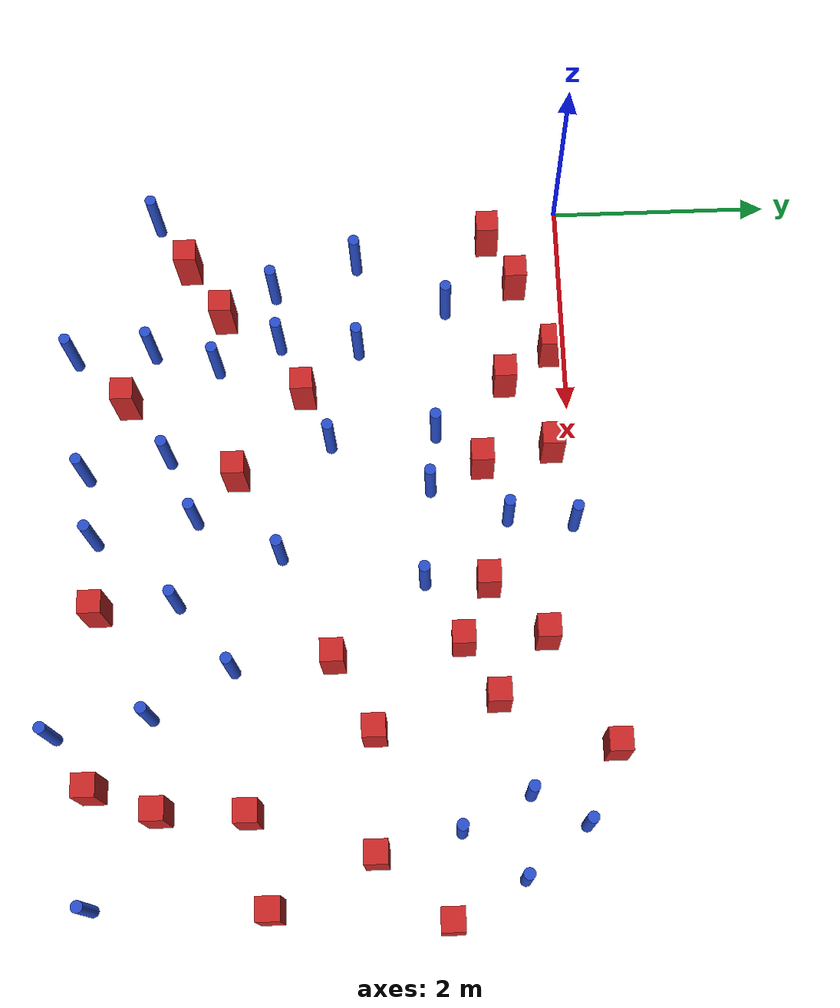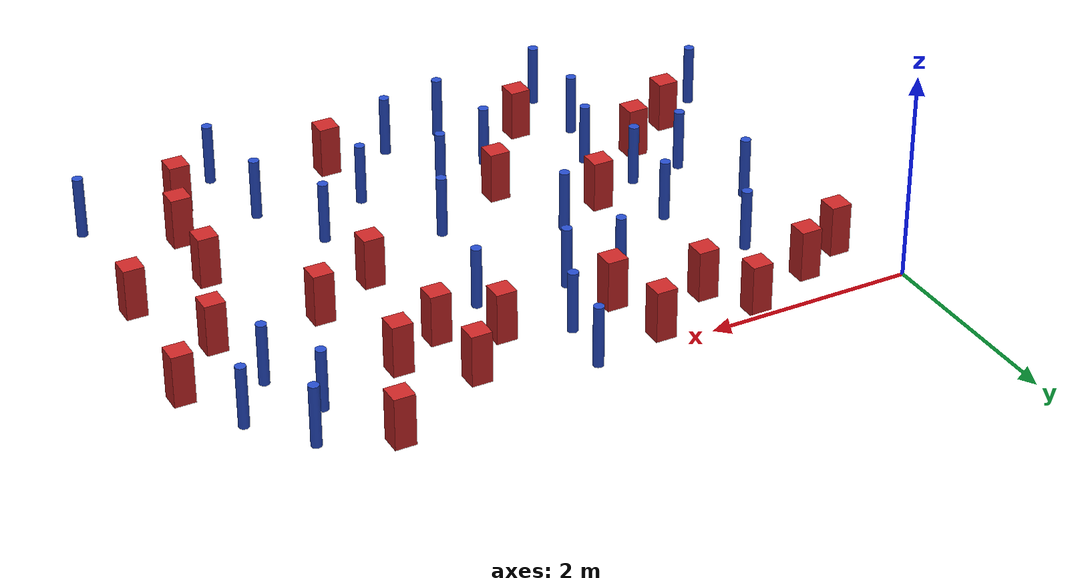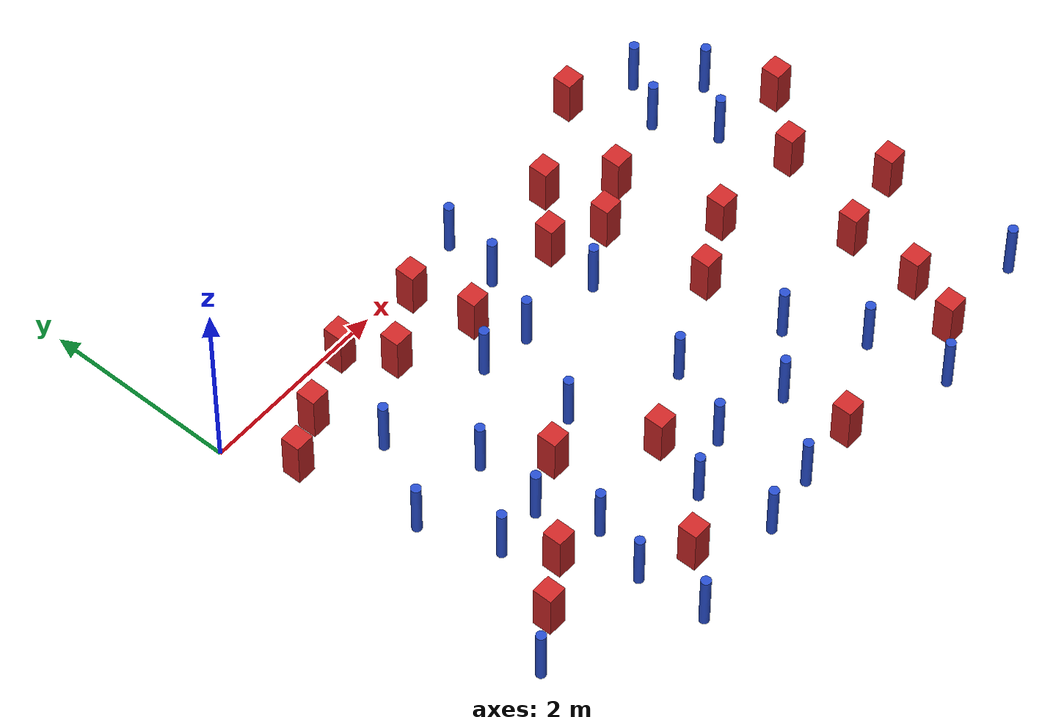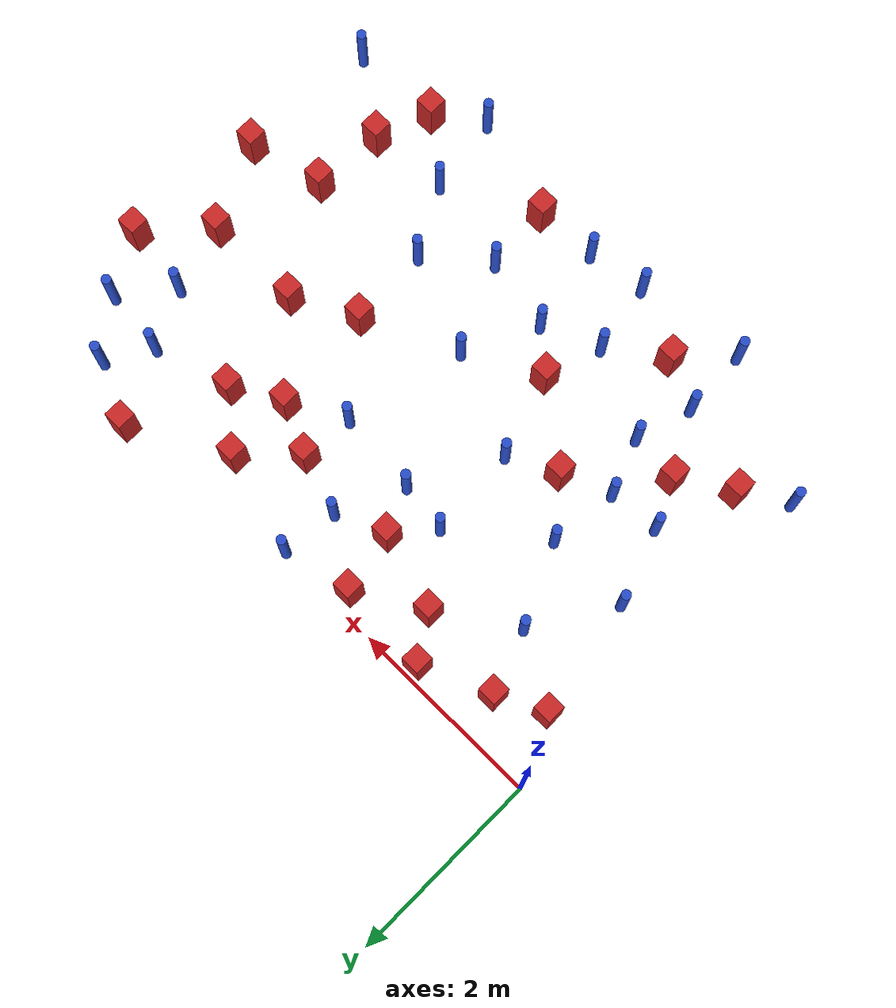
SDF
<sdf version="1.6">
 <model name="dense_83">
  <model name="pole_obstacle8">
   <static>true</static>
   <pose>5.48556464558 -0.522978440494 -2.66029137441e-07 -5.69430205637e-07 6.84129966554e-07 -8.68349370847e-08</pose>
   <link name="link">
    <pose>0 0 0.3 0 -0 0</pose>
    <inertial>
     <mass>1</mass>
     <inertia><ixx>0.145833</ixx><ixy>0</ixy><ixz>0</ixz><iyy>0.145833</iyy><iyz>0</iyz><izz>0.125</izz></inertia>
    </inertial>
    <collision name="collision">
     <geometry><cylinder><radius>0.05</radius><length>.6</length></cylinder></geometry>
    </collision>
    <visual name="visual">
     <geometry><cylinder><radius>0.05</radius><length>.6</length></cylinder></geometry>
     <material>
      <script><name>Gazebo/Blue</name><uri>file://media/materials/scripts/gazebo.material</uri></script>
     </material>
    </visual>
   </link>
  </model>
  <model name="pole_obstacle9">
   <static>true</static>
   <pose>3.62680131533 -1.34526293371 -2.66029137441e-07 -5.69430205626e-07 6.84129966567e-07 -8.68349370747e-08</pose>
   <link name="link">
    <pose>0 0 0.3 0 -0 0</pose>
    <inertial>
     <mass>1</mass>
     <inertia><ixx>0.145833</ixx><ixy>0</ixy><ixz>0</ixz><iyy>0.145833</iyy><iyz>0</iyz><izz>0.125</izz></inertia>
    </inertial>
    <collision name="collision">
     <geometry><cylinder><radius>0.05</radius><length>.6</length></cylinder></geometry>
    </collision>
    <visual name="visual">
     <geometry><cylinder><radius>0.05</radius><length>.6</length></cylinder></geometry>
     <material>
      <script><name>Gazebo/Blue</name><uri>file://media/materials/scripts/gazebo.material</uri></script>
     </material>
    </visual>
   </link>
  </model>
  <model name="square_post_obstacle17">
   <static>true</static>
   <pose>4.17508941673 -1.03326781542 -7.80171244635e-07 7.17449752808e-06 -5.6639232126e-07 2.2715510512e-05</pose>
   <link name="link">
    <pose>0 0 0.25 0 -0 0</pose>
    <inertial>
     <mass>100</mass>
     <inertia>
      <ixx>0.166667</ixx>
      <ixy>0</ixy>
      <ixz>0</ixz>
      <iyy>0.166667</iyy>
      <iyz>0</iyz>
      <izz>0.166667</izz>
     </inertia>
    </inertial>
    <collision name="collision"><geometry><box><size>.2 .2 .5</size></box></geometry></collision>
    <visual name="visual">
     <geometry><box><size>.2 .2 .5</size></box></geometry>
     <material>
      <script><name>Gazebo/Red</name><uri>file://media/materials/scripts/gazebo.material</uri></script>
     </material>
    </visual>
   </link>
  </model>
  <model name="pole_obstacle26">
   <static>true</static>
   <pose>1.01270264934 -1.07271620968 -2.66029137441e-07 -5.69430205629e-07 6.84129966564e-07 -8.6834937076e-08</pose>
   <link name="link">
    <pose>0 0 0.3 0 -0 0</pose>
    <inertial>
     <mass>1</mass>
     <inertia><ixx>0.145833</ixx><ixy>0</ixy><ixz>0</ixz><iyy>0.145833</iyy><iyz>0</iyz><izz>0.125</izz></inertia>
    </inertial>
    <collision name="collision">
     <geometry><cylinder><radius>0.05</radius><length>.6</length></cylinder></geometry>
    </collision>
    <visual name="visual">
     <geometry><cylinder><radius>0.05</radius><length>.6</length></cylinder></geometry>
     <material>
      <script><name>Gazebo/Blue</name><uri>file://media/materials/scripts/gazebo.material</uri></script>
     </material>
    </visual>
   </link>
  </model>
  <model name="square_post_obstacle25">
   <static>true</static>
   <pose>6.48393168841 -1.21312505478 -7.80171244635e-07 7.17449752808e-06 -5.6639232126e-07 2.2715510512e-05</pose>
   <link name="link">
    <pose>0 0 0.25 0 -0 0</pose>
    <inertial>
     <mass>100</mass>
     <inertia>
      <ixx>0.166667</ixx>
      <ixy>0</ixy>
      <ixz>0</ixz>
      <iyy>0.166667</iyy>
      <iyz>0</iyz>
      <izz>0.166667</izz>
     </inertia>
    </inertial>
    <collision name="collision"><geometry><box><size>.2 .2 .5</size></box></geometry></collision>
    <visual name="visual">
     <geometry><box><size>.2 .2 .5</size></box></geometry>
     <material>
      <script><name>Gazebo/Red</name><uri>file://media/materials/scripts/gazebo.material</uri></script>
     </material>
    </visual>
   </link>
  </model>
  <model name="square_post_obstacle28">
   <static>true</static>
   <pose>0.31420404367 -0.664617808103 -7.80171244635e-07 7.17449752808e-06 -5.6639232126e-07 2.2715510512e-05</pose>
   <link name="link">
    <pose>0 0 0.25 0 -0 0</pose>
    <inertial>
     <mass>100</mass>
     <inertia>
      <ixx>0.166667</ixx>
      <ixy>0</ixy>
      <ixz>0</ixz>
      <iyy>0.166667</iyy>
      <iyz>0</iyz>
      <izz>0.166667</izz>
     </inertia>
    </inertial>
    <collision name="collision"><geometry><box><size>.2 .2 .5</size></box></geometry></collision>
    <visual name="visual">
     <geometry><box><size>.2 .2 .5</size></box></geometry>
     <material>
      <script><name>Gazebo/Red</name><uri>file://media/materials/scripts/gazebo.material</uri></script>
     </material>
    </visual>
   </link>
  </model>
  <model name="square_post_obstacle30">
   <static>true</static>
   <pose>5.57821603923 -2.85233663925 -7.80171244635e-07 7.17449752808e-06 -5.6639232126e-07 2.2715510512e-05</pose>
   <link name="link">
    <pose>0 0 0.25 0 -0 0</pose>
    <inertial>
     <mass>100</mass>
     <inertia>
      <ixx>0.166667</ixx>
      <ixy>0</ixy>
      <ixz>0</ixz>
      <iyy>0.166667</iyy>
      <iyz>0</iyz>
      <izz>0.166667</izz>
     </inertia>
    </inertial>
    <collision name="collision"><geometry><box><size>.2 .2 .5</size></box></geometry></collision>
    <visual name="visual">
     <geometry><box><size>.2 .2 .5</size></box></geometry>
     <material>
      <script><name>Gazebo/Red</name><uri>file://media/materials/scripts/gazebo.material</uri></script>
     </material>
    </visual>
   </link>
  </model>
  <model name="pole_obstacle42">
   <static>true</static>
   <pose>2.31248929114 -2.14854013598 -2.66029137441e-07 -5.69430205643e-07 6.84129966548e-07 -8.68349370903e-08</pose>
   <link name="link">
    <pose>0 0 0.3 0 -0 0</pose>
    <inertial>
     <mass>1</mass>
     <inertia><ixx>0.145833</ixx><ixy>0</ixy><ixz>0</ixz><iyy>0.145833</iyy><iyz>0</iyz><izz>0.125</izz></inertia>
    </inertial>
    <collision name="collision">
     <geometry><cylinder><radius>0.05</radius><length>.6</length></cylinder></geometry>
    </collision>
    <visual name="visual">
     <geometry><cylinder><radius>0.05</radius><length>.6</length></cylinder></geometry>
     <material>
      <script><name>Gazebo/Blue</name><uri>file://media/materials/scripts/gazebo.material</uri></script>
     </material>
    </visual>
   </link>
  </model>
  <model name="pole_obstacle45">
   <static>true</static>
   <pose>4.8703518311 -4.50431790699 -2.66029137441e-07 -5.69430205655e-07 6.84129966534e-07 -8.68349370984e-08</pose>
   <link name="link">
    <pose>0 0 0.3 0 -0 0</pose>
    <inertial>
     <mass>1</mass>
     <inertia><ixx>0.145833</ixx><ixy>0</ixy><ixz>0</ixz><iyy>0.145833</iyy><iyz>0</iyz><izz>0.125</izz></inertia>
    </inertial>
    <collision name="collision">
     <geometry><cylinder><radius>0.05</radius><length>.6</length></cylinder></geometry>
    </collision>
    <visual name="visual">
     <geometry><cylinder><radius>0.05</radius><length>.6</length></cylinder></geometry>
     <material>
      <script><name>Gazebo/Blue</name><uri>file://media/materials/scripts/gazebo.material</uri></script>
     </material>
    </visual>
   </link>
  </model>
  <model name="square_post_obstacle37">
   <static>true</static>
   <pose>5.94241191292 -1.81008041231 -7.80171244635e-07 7.17449752808e-06 -5.6639232126e-07 2.2715510512e-05</pose>
   <link name="link">
    <pose>0 0 0.25 0 -0 0</pose>
    <inertial>
     <mass>100</mass>
     <inertia>
      <ixx>0.166667</ixx>
      <ixy>0</ixy>
      <ixz>0</ixz>
      <iyy>0.166667</iyy>
      <iyz>0</iyz>
      <izz>0.166667</izz>
     </inertia>
    </inertial>
    <collision name="collision"><geometry><box><size>.2 .2 .5</size></box></geometry></collision>
    <visual name="visual">
     <geometry><box><size>.2 .2 .5</size></box></geometry>
     <material>
      <script><name>Gazebo/Red</name><uri>file://media/materials/scripts/gazebo.material</uri></script>
     </material>
    </visual>
   </link>
  </model>
  <model name="pole_obstacle48">
   <static>true</static>
   <pose>0.046294303548 -3.74060029182 -2.66029137497e-07 -5.69430205678e-07 6.84129966499e-07 -8.68349371129e-08</pose>
   <link name="link">
    <pose>0 0 0.3 0 -0 0</pose>
    <inertial>
     <mass>1</mass>
     <inertia><ixx>0.145833</ixx><ixy>0</ixy><ixz>0</ixz><iyy>0.145833</iyy><iyz>0</iyz><izz>0.125</izz></inertia>
    </inertial>
    <collision name="collision">
     <geometry><cylinder><radius>0.05</radius><length>.6</length></cylinder></geometry>
    </collision>
    <visual name="visual">
     <geometry><cylinder><radius>0.05</radius><length>.6</length></cylinder></geometry>
     <material>
      <script><name>Gazebo/Blue</name><uri>file://media/materials/scripts/gazebo.material</uri></script>
     </material>
    </visual>
   </link>
  </model>
  <model name="square_post_obstacle42">
   <static>true</static>
   <pose>4.14476061425 -0.316647064395 -7.80171244635e-07 7.17449752808e-06 -5.6639232126e-07 2.2715510512e-05</pose>
   <link name="link">
    <pose>0 0 0.25 0 -0 0</pose>
    <inertial>
     <mass>100</mass>
     <inertia>
      <ixx>0.166667</ixx>
      <ixy>0</ixy>
      <ixz>0</ixz>
      <iyy>0.166667</iyy>
      <iyz>0</iyz>
      <izz>0.166667</izz>
     </inertia>
    </inertial>
    <collision name="collision"><geometry><box><size>.2 .2 .5</size></box></geometry></collision>
    <visual name="visual">
     <geometry><box><size>.2 .2 .5</size></box></geometry>
     <material>
      <script><name>Gazebo/Red</name><uri>file://media/materials/scripts/gazebo.material</uri></script>
     </material>
    </visual>
   </link>
  </model>
  <model name="pole_obstacle56">
   <static>true</static>
   <pose>3.75832690348 -3.48530207013 -2.66029137441e-07 -5.69430205643e-07 6.84129966548e-07 -8.68349370903e-08</pose>
   <link name="link">
    <pose>0 0 0.3 0 -0 0</pose>
    <inertial>
     <mass>1</mass>
     <inertia><ixx>0.145833</ixx><ixy>0</ixy><ixz>0</ixz><iyy>0.145833</iyy><iyz>0</iyz><izz>0.125</izz></inertia>
    </inertial>
    <collision name="collision">
     <geometry><cylinder><radius>0.05</radius><length>.6</length></cylinder></geometry>
    </collision>
    <visual name="visual">
     <geometry><cylinder><radius>0.05</radius><length>.6</length></cylinder></geometry>
     <material>
      <script><name>Gazebo/Blue</name><uri>file://media/materials/scripts/gazebo.material</uri></script>
     </material>
    </visual>
   </link>
  </model>
  <model name="pole_obstacle59">
   <static>true</static>
   <pose>2.76512413721 -1.26841696136 -2.66029137441e-07 -5.69430205626e-07 6.84129966567e-07 -8.68349370747e-08</pose>
   <link name="link">
    <pose>0 0 0.3 0 -0 0</pose>
    <inertial>
     <mass>1</mass>
     <inertia><ixx>0.145833</ixx><ixy>0</ixy><ixz>0</ixz><iyy>0.145833</iyy><iyz>0</iyz><izz>0.125</izz></inertia>
    </inertial>
    <collision name="collision">
     <geometry><cylinder><radius>0.05</radius><length>.6</length></cylinder></geometry>
    </collision>
    <visual name="visual">
     <geometry><cylinder><radius>0.05</radius><length>.6</length></cylinder></geometry>
     <material>
      <script><name>Gazebo/Blue</name><uri>file://media/materials/scripts/gazebo.material</uri></script>
     </material>
    </visual>
   </link>
  </model>
  <model name="square_post_obstacle52">
   <static>true</static>
   <pose>5.53671567951 -3.60047152278 -7.80171244635e-07 7.17449752808e-06 -5.6639232126e-07 2.2715510512e-05</pose>
   <link name="link">
    <pose>0 0 0.25 0 -0 0</pose>
    <inertial>
     <mass>100</mass>
     <inertia>
      <ixx>0.166667</ixx>
      <ixy>0</ixy>
      <ixz>0</ixz>
      <iyy>0.166667</iyy>
      <iyz>0</iyz>
      <izz>0.166667</izz>
     </inertia>
    </inertial>
    <collision name="collision"><geometry><box><size>.2 .2 .5</size></box></geometry></collision>
    <visual name="visual">
     <geometry><box><size>.2 .2 .5</size></box></geometry>
     <material>
      <script><name>Gazebo/Red</name><uri>file://media/materials/scripts/gazebo.material</uri></script>
     </material>
    </visual>
   </link>
  </model>
  <model name="square_post_obstacle57">
   <static>true</static>
   <pose>3.66004645824 -0.795900308183 -7.80171244635e-07 7.17449752808e-06 -5.6639232126e-07 2.2715510512e-05</pose>
   <link name="link">
    <pose>0 0 0.25 0 -0 0</pose>
    <inertial>
     <mass>100</mass>
     <inertia>
      <ixx>0.166667</ixx>
      <ixy>0</ixy>
      <ixz>0</ixz>
      <iyy>0.166667</iyy>
      <iyz>0</iyz>
      <izz>0.166667</izz>
     </inertia>
    </inertial>
    <collision name="collision"><geometry><box><size>.2 .2 .5</size></box></geometry></collision>
    <visual name="visual">
     <geometry><box><size>.2 .2 .5</size></box></geometry>
     <material>
      <script><name>Gazebo/Red</name><uri>file://media/materials/scripts/gazebo.material</uri></script>
     </material>
    </visual>
   </link>
  </model>
  <model name="square_post_obstacle61">
   <static>true</static>
   <pose>5.11688827714 0.210095731749 -7.80171244635e-07 7.17449752808e-06 -5.6639232126e-07 2.2715510512e-05</pose>
   <link name="link">
    <pose>0 0 0.25 0 -0 0</pose>
    <inertial>
     <mass>100</mass>
     <inertia>
      <ixx>0.166667</ixx>
      <ixy>0</ixy>
      <ixz>0</ixz>
      <iyy>0.166667</iyy>
      <iyz>0</iyz>
      <izz>0.166667</izz>
     </inertia>
    </inertial>
    <collision name="collision"><geometry><box><size>.2 .2 .5</size></box></geometry></collision>
    <visual name="visual">
     <geometry><box><size>.2 .2 .5</size></box></geometry>
     <material>
      <script><name>Gazebo/Red</name><uri>file://media/materials/scripts/gazebo.material</uri></script>
     </material>
    </visual>
   </link>
  </model>
  <model name="square_post_obstacle63">
   <static>true</static>
   <pose>2.42365478385 -0.175005993338 -7.80171244635e-07 7.17449752808e-06 -5.6639232126e-07 2.2715510512e-05</pose>
   <link name="link">
    <pose>0 0 0.25 0 -0 0</pose>
    <inertial>
     <mass>100</mass>
     <inertia>
      <ixx>0.166667</ixx>
      <ixy>0</ixy>
      <ixz>0</ixz>
      <iyy>0.166667</iyy>
      <iyz>0</iyz>
      <izz>0.166667</izz>
     </inertia>
    </inertial>
    <collision name="collision"><geometry><box><size>.2 .2 .5</size></box></geometry></collision>
    <visual name="visual">
     <geometry><box><size>.2 .2 .5</size></box></geometry>
     <material>
      <script><name>Gazebo/Red</name><uri>file://media/materials/scripts/gazebo.material</uri></script>
     </material>
    </visual>
   </link>
  </model>
  <model name="pole_obstacle75">
   <static>true</static>
   <pose>2.55288116183 -4.31305443753 -2.66029137441e-07 -5.69430205635e-07 6.84129966557e-07 -8.68349370832e-08</pose>
   <link name="link">
    <pose>0 0 0.3 0 -0 0</pose>
    <inertial>
     <mass>1</mass>
     <inertia><ixx>0.145833</ixx><ixy>0</ixy><ixz>0</ixz><iyy>0.145833</iyy><iyz>0</iyz><izz>0.125</izz></inertia>
    </inertial>
    <collision name="collision">
     <geometry><cylinder><radius>0.05</radius><length>.6</length></cylinder></geometry>
    </collision>
    <visual name="visual">
     <geometry><cylinder><radius>0.05</radius><length>.6</length></cylinder></geometry>
     <material>
      <script><name>Gazebo/Blue</name><uri>file://media/materials/scripts/gazebo.material</uri></script>
     </material>
    </visual>
   </link>
  </model>
  <model name="pole_obstacle77">
   <static>true</static>
   <pose>3.16044681511 -4.21988764941 -2.66029137441e-07 -5.69430205635e-07 6.84129966557e-07 -8.68349370832e-08</pose>
   <link name="link">
    <pose>0 0 0.3 0 -0 0</pose>
    <inertial>
     <mass>1</mass>
     <inertia><ixx>0.145833</ixx><ixy>0</ixy><ixz>0</ixz><iyy>0.145833</iyy><iyz>0</iyz><izz>0.125</izz></inertia>
    </inertial>
    <collision name="collision">
     <geometry><cylinder><radius>0.05</radius><length>.6</length></cylinder></geometry>
    </collision>
    <visual name="visual">
     <geometry><cylinder><radius>0.05</radius><length>.6</length></cylinder></geometry>
     <material>
      <script><name>Gazebo/Blue</name><uri>file://media/materials/scripts/gazebo.material</uri></script>
     </material>
    </visual>
   </link>
  </model>
  <model name="square_post_obstacle66">
   <static>true</static>
   <pose>1.86346210854 -3.96790870448 -7.80171244635e-07 7.17449752808e-06 -5.6639232126e-07 2.2715510512e-05</pose>
   <link name="link">
    <pose>0 0 0.25 0 -0 0</pose>
    <inertial>
     <mass>100</mass>
     <inertia>
      <ixx>0.166667</ixx>
      <ixy>0</ixy>
      <ixz>0</ixz>
      <iyy>0.166667</iyy>
      <iyz>0</iyz>
      <izz>0.166667</izz>
     </inertia>
    </inertial>
    <collision name="collision"><geometry><box><size>.2 .2 .5</size></box></geometry></collision>
    <visual name="visual">
     <geometry><box><size>.2 .2 .5</size></box></geometry>
     <material>
      <script><name>Gazebo/Red</name><uri>file://media/materials/scripts/gazebo.material</uri></script>
     </material>
    </visual>
   </link>
  </model>
  <model name="pole_obstacle79">
   <static>true</static>
   <pose>1.41374702477 -4.46231431095 -2.66029137441e-07 -5.69430205635e-07 6.84129966557e-07 -8.68349370822e-08</pose>
   <link name="link">
    <pose>0 0 0.3 0 -0 0</pose>
    <inertial>
     <mass>1</mass>
     <inertia><ixx>0.145833</ixx><ixy>0</ixy><ixz>0</ixz><iyy>0.145833</iyy><iyz>0</iyz><izz>0.125</izz></inertia>
    </inertial>
    <collision name="collision">
     <geometry><cylinder><radius>0.05</radius><length>.6</length></cylinder></geometry>
    </collision>
    <visual name="visual">
     <geometry><cylinder><radius>0.05</radius><length>.6</length></cylinder></geometry>
     <material>
      <script><name>Gazebo/Blue</name><uri>file://media/materials/scripts/gazebo.material</uri></script>
     </material>
    </visual>
   </link>
  </model>
  <model name="square_post_obstacle71">
   <static>true</static>
   <pose>1.0345415356 -3.10886031737 -7.80171244635e-07 7.17449752808e-06 -5.6639232126e-07 2.2715510512e-05</pose>
   <link name="link">
    <pose>0 0 0.25 0 -0 0</pose>
    <inertial>
     <mass>100</mass>
     <inertia>
      <ixx>0.166667</ixx>
      <ixy>0</ixy>
      <ixz>0</ixz>
      <iyy>0.166667</iyy>
      <iyz>0</iyz>
      <izz>0.166667</izz>
     </inertia>
    </inertial>
    <collision name="collision"><geometry><box><size>.2 .2 .5</size></box></geometry></collision>
    <visual name="visual">
     <geometry><box><size>.2 .2 .5</size></box></geometry>
     <material>
      <script><name>Gazebo/Red</name><uri>file://media/materials/scripts/gazebo.material</uri></script>
     </material>
    </visual>
   </link>
  </model>
  <model name="square_post_obstacle74">
   <static>true</static>
   <pose>4.92937804412 -1.80684382391 -7.80171244635e-07 7.17449752808e-06 -5.6639232126e-07 2.2715510512e-05</pose>
   <link name="link">
    <pose>0 0 0.25 0 -0 0</pose>
    <inertial>
     <mass>100</mass>
     <inertia>
      <ixx>0.166667</ixx>
      <ixy>0</ixy>
      <ixz>0</ixz>
      <iyy>0.166667</iyy>
      <iyz>0</iyz>
      <izz>0.166667</izz>
     </inertia>
    </inertial>
    <collision name="collision"><geometry><box><size>.2 .2 .5</size></box></geometry></collision>
    <visual name="visual">
     <geometry><box><size>.2 .2 .5</size></box></geometry>
     <material>
      <script><name>Gazebo/Red</name><uri>file://media/materials/scripts/gazebo.material</uri></script>
     </material>
    </visual>
   </link>
  </model>
  <model name="pole_obstacle91">
   <static>true</static>
   <pose>3.06803423717 -0.595813224669 -2.66029137441e-07 -5.69430205624e-07 6.8412996657e-07 -8.68349370746e-08</pose>
   <link name="link">
    <pose>0 0 0.3 0 -0 0</pose>
    <inertial>
     <mass>1</mass>
     <inertia><ixx>0.145833</ixx><ixy>0</ixy><ixz>0</ixz><iyy>0.145833</iyy><iyz>0</iyz><izz>0.125</izz></inertia>
    </inertial>
    <collision name="collision">
     <geometry><cylinder><radius>0.05</radius><length>.6</length></cylinder></geometry>
    </collision>
    <visual name="visual">
     <geometry><cylinder><radius>0.05</radius><length>.6</length></cylinder></geometry>
     <material>
      <script><name>Gazebo/Blue</name><uri>file://media/materials/scripts/gazebo.material</uri></script>
     </material>
    </visual>
   </link>
  </model>
  <model name="square_post_obstacle87">
   <static>true</static>
   <pose>2.55568639354 -0.80396343304 -7.80171244635e-07 7.17449752808e-06 -5.6639232126e-07 2.2715510512e-05</pose>
   <link name="link">
    <pose>0 0 0.25 0 -0 0</pose>
    <inertial>
     <mass>100</mass>
     <inertia>
      <ixx>0.166667</ixx>
      <ixy>0</ixy>
      <ixz>0</ixz>
      <iyy>0.166667</iyy>
      <iyz>0</iyz>
      <izz>0.166667</izz>
     </inertia>
    </inertial>
    <collision name="collision"><geometry><box><size>.2 .2 .5</size></box></geometry></collision>
    <visual name="visual">
     <geometry><box><size>.2 .2 .5</size></box></geometry>
     <material>
      <script><name>Gazebo/Red</name><uri>file://media/materials/scripts/gazebo.material</uri></script>
     </material>
    </visual>
   </link>
  </model>
  <model name="square_post_obstacle92">
   <static>true</static>
   <pose>2.59551853209 -2.98226264884 -7.80171244635e-07 7.17449752808e-06 -5.6639232126e-07 2.2715510512e-05</pose>
   <link name="link">
    <pose>0 0 0.25 0 -0 0</pose>
    <inertial>
     <mass>100</mass>
     <inertia>
      <ixx>0.166667</ixx>
      <ixy>0</ixy>
      <ixz>0</ixz>
      <iyy>0.166667</iyy>
      <iyz>0</iyz>
      <izz>0.166667</izz>
     </inertia>
    </inertial>
    <collision name="collision"><geometry><box><size>.2 .2 .5</size></box></geometry></collision>
    <visual name="visual">
     <geometry><box><size>.2 .2 .5</size></box></geometry>
     <material>
      <script><name>Gazebo/Red</name><uri>file://media/materials/scripts/gazebo.material</uri></script>
     </material>
    </visual>
   </link>
  </model>
  <model name="square_post_obstacle95">
   <static>true</static>
   <pose>6.34978637031 -2.66949690727 -7.80171244635e-07 7.17449752808e-06 -5.6639232126e-07 2.2715510512e-05</pose>
   <link name="link">
    <pose>0 0 0.25 0 -0 0</pose>
    <inertial>
     <mass>100</mass>
     <inertia>
      <ixx>0.166667</ixx>
      <ixy>0</ixy>
      <ixz>0</ixz>
      <iyy>0.166667</iyy>
      <iyz>0</iyz>
      <izz>0.166667</izz>
     </inertia>
    </inertial>
    <collision name="collision"><geometry><box><size>.2 .2 .5</size></box></geometry></collision>
    <visual name="visual">
     <geometry><box><size>.2 .2 .5</size></box></geometry>
     <material>
      <script><name>Gazebo/Red</name><uri>file://media/materials/scripts/gazebo.material</uri></script>
     </material>
    </visual>
   </link>
  </model>
  <model name="square_post_obstacle101">
   <static>true</static>
   <pose>0.512166086692 -3.43879553403 -7.80171244635e-07 7.17449752808e-06 -5.6639232126e-07 2.2715510512e-05</pose>
   <link name="link">
    <pose>0 0 0.25 0 -0 0</pose>
    <inertial>
     <mass>100</mass>
     <inertia>
      <ixx>0.166667</ixx>
      <ixy>0</ixy>
      <ixz>0</ixz>
      <iyy>0.166667</iyy>
      <iyz>0</iyz>
      <izz>0.166667</izz>
     </inertia>
    </inertial>
    <collision name="collision"><geometry><box><size>.2 .2 .5</size></box></geometry></collision>
    <visual name="visual">
     <geometry><box><size>.2 .2 .5</size></box></geometry>
     <material>
      <script><name>Gazebo/Red</name><uri>file://media/materials/scripts/gazebo.material</uri></script>
     </material>
    </visual>
   </link>
  </model>
  <model name="pole_obstacle108">
   <static>true</static>
   <pose>2.24724219694 -1.2034379061 -2.66029137441e-07 -5.69430205626e-07 6.84129966567e-07 -8.68349370747e-08</pose>
   <link name="link">
    <pose>0 0 0.3 0 -0 0</pose>
    <inertial>
     <mass>1</mass>
     <inertia><ixx>0.145833</ixx><ixy>0</ixy><ixz>0</ixz><iyy>0.145833</iyy><iyz>0</iyz><izz>0.125</izz></inertia>
    </inertial>
    <collision name="collision">
     <geometry><cylinder><radius>0.05</radius><length>.6</length></cylinder></geometry>
    </collision>
    <visual name="visual">
     <geometry><cylinder><radius>0.05</radius><length>.6</length></cylinder></geometry>
     <material>
      <script><name>Gazebo/Blue</name><uri>file://media/materials/scripts/gazebo.material</uri></script>
     </material>
    </visual>
   </link>
  </model>
  <model name="square_post_obstacle110">
   <static>true</static>
   <pose>1.76650397065 -0.566279813399 -7.80171244635e-07 7.17449752808e-06 -5.6639232126e-07 2.2715510512e-05</pose>
   <link name="link">
    <pose>0 0 0.25 0 -0 0</pose>
    <inertial>
     <mass>100</mass>
     <inertia>
      <ixx>0.166667</ixx>
      <ixy>0</ixy>
      <ixz>0</ixz>
      <iyy>0.166667</iyy>
      <iyz>0</iyz>
      <izz>0.166667</izz>
     </inertia>
    </inertial>
    <collision name="collision"><geometry><box><size>.2 .2 .5</size></box></geometry></collision>
    <visual name="visual">
     <geometry><box><size>.2 .2 .5</size></box></geometry>
     <material>
      <script><name>Gazebo/Red</name><uri>file://media/materials/scripts/gazebo.material</uri></script>
     </material>
    </visual>
   </link>
  </model>
  <model name="pole_obstacle116">
   <static>true</static>
   <pose>6.28686983581 -4.14047727729 -2.66029137441e-07 -5.69430205655e-07 6.84129966534e-07 -8.68349370984e-08</pose>
   <link name="link">
    <pose>0 0 0.3 0 -0 0</pose>
    <inertial>
     <mass>1</mass>
     <inertia><ixx>0.145833</ixx><ixy>0</ixy><ixz>0</ixz><iyy>0.145833</iyy><iyz>0</iyz><izz>0.125</izz></inertia>
    </inertial>
    <collision name="collision">
     <geometry><cylinder><radius>0.05</radius><length>.6</length></cylinder></geometry>
    </collision>
    <visual name="visual">
     <geometry><cylinder><radius>0.05</radius><length>.6</length></cylinder></geometry>
     <material>
      <script><name>Gazebo/Blue</name><uri>file://media/materials/scripts/gazebo.material</uri></script>
     </material>
    </visual>
   </link>
  </model>
  <model name="pole_obstacle118">
   <static>true</static>
   <pose>1.37227139003 -3.75136929417 -2.66029137441e-07 -5.69430205634e-07 6.84129966558e-07 -8.68349370806e-08</pose>
   <link name="link">
    <pose>0 0 0.3 0 -0 0</pose>
    <inertial>
     <mass>1</mass>
     <inertia><ixx>0.145833</ixx><ixy>0</ixy><ixz>0</ixz><iyy>0.145833</iyy><iyz>0</iyz><izz>0.125</izz></inertia>
    </inertial>
    <collision name="collision">
     <geometry><cylinder><radius>0.05</radius><length>.6</length></cylinder></geometry>
    </collision>
    <visual name="visual">
     <geometry><cylinder><radius>0.05</radius><length>.6</length></cylinder></geometry>
     <material>
      <script><name>Gazebo/Blue</name><uri>file://media/materials/scripts/gazebo.material</uri></script>
     </material>
    </visual>
   </link>
  </model>
  <model name="pole_obstacle120">
   <static>true</static>
   <pose>2.41326067394 -3.58590043363 -2.66029137441e-07 -5.69430205643e-07 6.84129966548e-07 -8.68349370903e-08</pose>
   <link name="link">
    <pose>0 0 0.3 0 -0 0</pose>
    <inertial>
     <mass>1</mass>
     <inertia><ixx>0.145833</ixx><ixy>0</ixy><ixz>0</ixz><iyy>0.145833</iyy><iyz>0</iyz><izz>0.125</izz></inertia>
    </inertial>
    <collision name="collision">
     <geometry><cylinder><radius>0.05</radius><length>.6</length></cylinder></geometry>
    </collision>
    <visual name="visual">
     <geometry><cylinder><radius>0.05</radius><length>.6</length></cylinder></geometry>
     <material>
      <script><name>Gazebo/Blue</name><uri>file://media/materials/scripts/gazebo.material</uri></script>
     </material>
    </visual>
   </link>
  </model>
  <model name="square_post_obstacle129">
   <static>true</static>
   <pose>4.28862442654 -2.14318529634 -7.80171244635e-07 7.17449752808e-06 -5.6639232126e-07 2.2715510512e-05</pose>
   <link name="link">
    <pose>0 0 0.25 0 -0 0</pose>
    <inertial>
     <mass>100</mass>
     <inertia>
      <ixx>0.166667</ixx>
      <ixy>0</ixy>
      <ixz>0</ixz>
      <iyy>0.166667</iyy>
      <iyz>0</iyz>
      <izz>0.166667</izz>
     </inertia>
    </inertial>
    <collision name="collision"><geometry><box><size>.2 .2 .5</size></box></geometry></collision>
    <visual name="visual">
     <geometry><box><size>.2 .2 .5</size></box></geometry>
     <material>
      <script><name>Gazebo/Red</name><uri>file://media/materials/scripts/gazebo.material</uri></script>
     </material>
    </visual>
   </link>
  </model>
  <model name="square_post_obstacle130">
   <static>true</static>
   <pose>0.783642608275 -0.427954378581 -7.80171244635e-07 7.17449752808e-06 -5.6639232126e-07 2.2715510512e-05</pose>
   <link name="link">
    <pose>0 0 0.25 0 -0 0</pose>
    <inertial>
     <mass>100</mass>
     <inertia>
      <ixx>0.166667</ixx>
      <ixy>0</ixy>
      <ixz>0</ixz>
      <iyy>0.166667</iyy>
      <iyz>0</iyz>
      <izz>0.166667</izz>
     </inertia>
    </inertial>
    <collision name="collision"><geometry><box><size>.2 .2 .5</size></box></geometry></collision>
    <visual name="visual">
     <geometry><box><size>.2 .2 .5</size></box></geometry>
     <material>
      <script><name>Gazebo/Red</name><uri>file://media/materials/scripts/gazebo.material</uri></script>
     </material>
    </visual>
   </link>
  </model>
  <model name="pole_obstacle140">
   <static>true</static>
   <pose>1.32299150573 -2.59924965664 -2.66029137441e-07 -5.69430205634e-07 6.84129966558e-07 -8.68349370806e-08</pose>
   <link name="link">
    <pose>0 0 0.3 0 -0 0</pose>
    <inertial>
     <mass>1</mass>
     <inertia><ixx>0.145833</ixx><ixy>0</ixy><ixz>0</ixz><iyy>0.145833</iyy><iyz>0</iyz><izz>0.125</izz></inertia>
    </inertial>
    <collision name="collision">
     <geometry><cylinder><radius>0.05</radius><length>.6</length></cylinder></geometry>
    </collision>
    <visual name="visual">
     <geometry><cylinder><radius>0.05</radius><length>.6</length></cylinder></geometry>
     <material>
      <script><name>Gazebo/Blue</name><uri>file://media/materials/scripts/gazebo.material</uri></script>
     </material>
    </visual>
   </link>
  </model>
  <model name="pole_obstacle146">
   <static>true</static>
   <pose>3.1346609038 -0.0157882824939 -2.66029137441e-07 -5.69430205625e-07 6.84129966569e-07 -8.68349370755e-08</pose>
   <link name="link">
    <pose>0 0 0.3 0 -0 0</pose>
    <inertial>
     <mass>1</mass>
     <inertia><ixx>0.145833</ixx><ixy>0</ixy><ixz>0</ixz><iyy>0.145833</iyy><iyz>0</iyz><izz>0.125</izz></inertia>
    </inertial>
    <collision name="collision">
     <geometry><cylinder><radius>0.05</radius><length>.6</length></cylinder></geometry>
    </collision>
    <visual name="visual">
     <geometry><cylinder><radius>0.05</radius><length>.6</length></cylinder></geometry>
     <material>
      <script><name>Gazebo/Blue</name><uri>file://media/materials/scripts/gazebo.material</uri></script>
     </material>
    </visual>
   </link>
  </model>
  <model name="pole_obstacle147">
   <static>true</static>
   <pose>1.54036449454 -3.1638119961 -2.66029137441e-07 -5.69430205634e-07 6.84129966558e-07 -8.68349370806e-08</pose>
   <link name="link">
    <pose>0 0 0.3 0 -0 0</pose>
    <inertial>
     <mass>1</mass>
     <inertia><ixx>0.145833</ixx><ixy>0</ixy><ixz>0</ixz><iyy>0.145833</iyy><iyz>0</iyz><izz>0.125</izz></inertia>
    </inertial>
    <collision name="collision">
     <geometry><cylinder><radius>0.05</radius><length>.6</length></cylinder></geometry>
    </collision>
    <visual name="visual">
     <geometry><cylinder><radius>0.05</radius><length>.6</length></cylinder></geometry>
     <material>
      <script><name>Gazebo/Blue</name><uri>file://media/materials/scripts/gazebo.material</uri></script>
     </material>
    </visual>
   </link>
  </model>
  <model name="pole_obstacle149">
   <static>true</static>
   <pose>5.75081618374 -0.0707773751322 -2.66029137441e-07 -5.69430205621e-07 6.84129966573e-07 -8.68349370722e-08</pose>
   <link name="link">
    <pose>0 0 0.3 0 -0 0</pose>
    <inertial>
     <mass>1</mass>
     <inertia><ixx>0.145833</ixx><ixy>0</ixy><ixz>0</ixz><iyy>0.145833</iyy><iyz>0</iyz><izz>0.125</izz></inertia>
    </inertial>
    <collision name="collision">
     <geometry><cylinder><radius>0.05</radius><length>.6</length></cylinder></geometry>
    </collision>
    <visual name="visual">
     <geometry><cylinder><radius>0.05</radius><length>.6</length></cylinder></geometry>
     <material>
      <script><name>Gazebo/Blue</name><uri>file://media/materials/scripts/gazebo.material</uri></script>
     </material>
    </visual>
   </link>
  </model>
  <model name="pole_obstacle150">
   <static>true</static>
   <pose>2.99726680464 -3.33847926005 -2.66029137441e-07 -5.69430205643e-07 6.84129966548e-07 -8.68349370903e-08</pose>
   <link name="link">
    <pose>0 0 0.3 0 -0 0</pose>
    <inertial>
     <mass>1</mass>
     <inertia><ixx>0.145833</ixx><ixy>0</ixy><ixz>0</ixz><iyy>0.145833</iyy><iyz>0</iyz><izz>0.125</izz></inertia>
    </inertial>
    <collision name="collision">
     <geometry><cylinder><radius>0.05</radius><length>.6</length></cylinder></geometry>
    </collision>
    <visual name="visual">
     <geometry><cylinder><radius>0.05</radius><length>.6</length></cylinder></geometry>
     <material>
      <script><name>Gazebo/Blue</name><uri>file://media/materials/scripts/gazebo.material</uri></script>
     </material>
    </visual>
   </link>
  </model>
  <model name="square_post_obstacle153">
   <static>true</static>
   <pose>5.3291465948 -4.15873363536 -7.80171244635e-07 7.17449752808e-06 -5.6639232126e-07 2.2715510512e-05</pose>
   <link name="link">
    <pose>0 0 0.25 0 -0 0</pose>
    <inertial>
     <mass>100</mass>
     <inertia>
      <ixx>0.166667</ixx>
      <ixy>0</ixy>
      <ixz>0</ixz>
      <iyy>0.166667</iyy>
      <iyz>0</iyz>
      <izz>0.166667</izz>
     </inertia>
    </inertial>
    <collision name="collision"><geometry><box><size>.2 .2 .5</size></box></geometry></collision>
    <visual name="visual">
     <geometry><box><size>.2 .2 .5</size></box></geometry>
     <material>
      <script><name>Gazebo/Red</name><uri>file://media/materials/scripts/gazebo.material</uri></script>
     </material>
    </visual>
   </link>
  </model>
  <model name="pole_obstacle164">
   <static>true</static>
   <pose>4.35166966752 -3.00172466701 -2.66029137441e-07 -5.69430205643e-07 6.84129966548e-07 -8.68349370881e-08</pose>
   <link name="link">
    <pose>0 0 0.3 0 -0 0</pose>
    <inertial>
     <mass>1</mass>
     <inertia><ixx>0.145833</ixx><ixy>0</ixy><ixz>0</ixz><iyy>0.145833</iyy><iyz>0</iyz><izz>0.125</izz></inertia>
    </inertial>
    <collision name="collision">
     <geometry><cylinder><radius>0.05</radius><length>.6</length></cylinder></geometry>
    </collision>
    <visual name="visual">
     <geometry><cylinder><radius>0.05</radius><length>.6</length></cylinder></geometry>
     <material>
      <script><name>Gazebo/Blue</name><uri>file://media/materials/scripts/gazebo.material</uri></script>
     </material>
    </visual>
   </link>
  </model>
  <model name="pole_obstacle166">
   <static>true</static>
   <pose>0.801377727985 -2.64686124198 -2.66029137441e-07 -5.69430205631e-07 6.84129966562e-07 -8.68349370796e-08</pose>
   <link name="link">
    <pose>0 0 0.3 0 -0 0</pose>
    <inertial>
     <mass>1</mass>
     <inertia><ixx>0.145833</ixx><ixy>0</ixy><ixz>0</ixz><iyy>0.145833</iyy><iyz>0</iyz><izz>0.125</izz></inertia>
    </inertial>
    <collision name="collision">
     <geometry><cylinder><radius>0.05</radius><length>.6</length></cylinder></geometry>
    </collision>
    <visual name="visual">
     <geometry><cylinder><radius>0.05</radius><length>.6</length></cylinder></geometry>
     <material>
      <script><name>Gazebo/Blue</name><uri>file://media/materials/scripts/gazebo.material</uri></script>
     </material>
    </visual>
   </link>
  </model>
  <model name="square_post_obstacle171">
   <static>true</static>
   <pose>3.80027505249 -4.17196665795 -7.80171244635e-07 7.17449752808e-06 -5.6639232126e-07 2.2715510512e-05</pose>
   <link name="link">
    <pose>0 0 0.25 0 -0 0</pose>
    <inertial>
     <mass>100</mass>
     <inertia>
      <ixx>0.166667</ixx>
      <ixy>0</ixy>
      <ixz>0</ixz>
      <iyy>0.166667</iyy>
      <iyz>0</iyz>
      <izz>0.166667</izz>
     </inertia>
    </inertial>
    <collision name="collision"><geometry><box><size>.2 .2 .5</size></box></geometry></collision>
    <visual name="visual">
     <geometry><box><size>.2 .2 .5</size></box></geometry>
     <material>
      <script><name>Gazebo/Red</name><uri>file://media/materials/scripts/gazebo.material</uri></script>
     </material>
    </visual>
   </link>
  </model>
  <model name="pole_obstacle175">
   <static>true</static>
   <pose>4.73672011619 -3.691479203 -2.66029137441e-07 -5.69430205643e-07 6.84129966548e-07 -8.68349370881e-08</pose>
   <link name="link">
    <pose>0 0 0.3 0 -0 0</pose>
    <inertial>
     <mass>1</mass>
     <inertia><ixx>0.145833</ixx><ixy>0</ixy><ixz>0</ixz><iyy>0.145833</iyy><iyz>0</iyz><izz>0.125</izz></inertia>
    </inertial>
    <collision name="collision">
     <geometry><cylinder><radius>0.05</radius><length>.6</length></cylinder></geometry>
    </collision>
    <visual name="visual">
     <geometry><cylinder><radius>0.05</radius><length>.6</length></cylinder></geometry>
     <material>
      <script><name>Gazebo/Blue</name><uri>file://media/materials/scripts/gazebo.material</uri></script>
     </material>
    </visual>
   </link>
  </model>
  <model name="pole_obstacle176">
   <static>true</static>
   <pose>6.16942751164 -0.602673733651 -2.66029137441e-07 -5.69430205635e-07 6.84129966557e-07 -8.68349370823e-08</pose>
   <link name="link">
    <pose>0 0 0.3 0 -0 0</pose>
    <inertial>
     <mass>1</mass>
     <inertia><ixx>0.145833</ixx><ixy>0</ixy><ixz>0</ixz><iyy>0.145833</iyy><iyz>0</iyz><izz>0.125</izz></inertia>
    </inertial>
    <collision name="collision">
     <geometry><cylinder><radius>0.05</radius><length>.6</length></cylinder></geometry>
    </collision>
    <visual name="visual">
     <geometry><cylinder><radius>0.05</radius><length>.6</length></cylinder></geometry>
     <material>
      <script><name>Gazebo/Blue</name><uri>file://media/materials/scripts/gazebo.material</uri></script>
     </material>
    </visual>
   </link>
  </model>
  <model name="pole_obstacle177">
   <static>true</static>
   <pose>3.35168741306 -2.5922402351 -2.66029137441e-07 -5.69430205643e-07 6.84129966548e-07 -8.68349370903e-08</pose>
   <link name="link">
    <pose>0 0 0.3 0 -0 0</pose>
    <inertial>
     <mass>1</mass>
     <inertia><ixx>0.145833</ixx><ixy>0</ixy><ixz>0</ixz><iyy>0.145833</iyy><iyz>0</iyz><izz>0.125</izz></inertia>
    </inertial>
    <collision name="collision">
     <geometry><cylinder><radius>0.05</radius><length>.6</length></cylinder></geometry>
    </collision>
    <visual name="visual">
     <geometry><cylinder><radius>0.05</radius><length>.6</length></cylinder></geometry>
     <material>
      <script><name>Gazebo/Blue</name><uri>file://media/materials/scripts/gazebo.material</uri></script>
     </material>
    </visual>
   </link>
  </model>
  <model name="square_post_obstacle186">
   <static>true</static>
   <pose>4.67187401048 -0.756591584636 -7.80171244635e-07 7.17449752808e-06 -5.6639232126e-07 2.2715510512e-05</pose>
   <link name="link">
    <pose>0 0 0.25 0 -0 0</pose>
    <inertial>
     <mass>100</mass>
     <inertia>
      <ixx>0.166667</ixx>
      <ixy>0</ixy>
      <ixz>0</ixz>
      <iyy>0.166667</iyy>
      <iyz>0</iyz>
      <izz>0.166667</izz>
     </inertia>
    </inertial>
    <collision name="collision"><geometry><box><size>.2 .2 .5</size></box></geometry></collision>
    <visual name="visual">
     <geometry><box><size>.2 .2 .5</size></box></geometry>
     <material>
      <script><name>Gazebo/Red</name><uri>file://media/materials/scripts/gazebo.material</uri></script>
     </material>
    </visual>
   </link>
  </model>
  <model name="square_post_obstacle187">
   <static>true</static>
   <pose>1.82221345361 -2.3821362567 -7.80171244635e-07 7.17449752808e-06 -5.6639232126e-07 2.2715510512e-05</pose>
   <link name="link">
    <pose>0 0 0.25 0 -0 0</pose>
    <inertial>
     <mass>100</mass>
     <inertia>
      <ixx>0.166667</ixx>
      <ixy>0</ixy>
      <ixz>0</ixz>
      <iyy>0.166667</iyy>
      <iyz>0</iyz>
      <izz>0.166667</izz>
     </inertia>
    </inertial>
    <collision name="collision"><geometry><box><size>.2 .2 .5</size></box></geometry></collision>
    <visual name="visual">
     <geometry><box><size>.2 .2 .5</size></box></geometry>
     <material>
      <script><name>Gazebo/Red</name><uri>file://media/materials/scripts/gazebo.material</uri></script>
     </material>
    </visual>
   </link>
  </model>
  <model name="square_post_obstacle190">
   <static>true</static>
   <pose>1.47885022469 -0.134177952153 -7.80171244635e-07 7.17449752808e-06 -5.6639232126e-07 2.2715510512e-05</pose>
   <link name="link">
    <pose>0 0 0.25 0 -0 0</pose>
    <inertial>
     <mass>100</mass>
     <inertia>
      <ixx>0.166667</ixx>
      <ixy>0</ixy>
      <ixz>0</ixz>
      <iyy>0.166667</iyy>
      <iyz>0</iyz>
      <izz>0.166667</izz>
     </inertia>
    </inertial>
    <collision name="collision"><geometry><box><size>.2 .2 .5</size></box></geometry></collision>
    <visual name="visual">
     <geometry><box><size>.2 .2 .5</size></box></geometry>
     <material>
      <script><name>Gazebo/Red</name><uri>file://media/materials/scripts/gazebo.material</uri></script>
     </material>
    </visual>
   </link>
  </model>
  <model name="pole_obstacle206">
   <static>true</static>
   <pose>0.525421029226 -1.88841242246 -2.66029137441e-07 -5.69430205641e-07 6.8412996655e-07 -8.68349370867e-08</pose>
   <link name="link">
    <pose>0 0 0.3 0 -0 0</pose>
    <inertial>
     <mass>1</mass>
     <inertia><ixx>0.145833</ixx><ixy>0</ixy><ixz>0</ixz><iyy>0.145833</iyy><iyz>0</iyz><izz>0.125</izz></inertia>
    </inertial>
    <collision name="collision">
     <geometry><cylinder><radius>0.05</radius><length>.6</length></cylinder></geometry>
    </collision>
    <visual name="visual">
     <geometry><cylinder><radius>0.05</radius><length>.6</length></cylinder></geometry>
     <material>
      <script><name>Gazebo/Blue</name><uri>file://media/materials/scripts/gazebo.material</uri></script>
     </material>
    </visual>
   </link>
  </model>
  <model name="pole_obstacle217">
   <static>true</static>
   <pose>1.39842000888 -1.88380997996 -2.66029137441e-07 -5.69430205632e-07 6.8412996656e-07 -8.68349370804e-08</pose>
   <link name="link">
    <pose>0 0 0.3 0 -0 0</pose>
    <inertial>
     <mass>1</mass>
     <inertia><ixx>0.145833</ixx><ixy>0</ixy><ixz>0</ixz><iyy>0.145833</iyy><iyz>0</iyz><izz>0.125</izz></inertia>
    </inertial>
    <collision name="collision">
     <geometry><cylinder><radius>0.05</radius><length>.6</length></cylinder></geometry>
    </collision>
    <visual name="visual">
     <geometry><cylinder><radius>0.05</radius><length>.6</length></cylinder></geometry>
     <material>
      <script><name>Gazebo/Blue</name><uri>file://media/materials/scripts/gazebo.material</uri></script>
     </material>
    </visual>
   </link>
  </model>
  <model name="pole_obstacle221">
   <static>true</static>
   <pose>5.76957000888 -1.10902997996 -2.66029137441e-07 -5.69430205626e-07 6.84129966567e-07 -8.68349370773e-08</pose>
   <link name="link">
    <pose>0 0 0.3 0 -0 0</pose>
    <inertial>
     <mass>1</mass>
     <inertia><ixx>0.145833</ixx><ixy>0</ixy><ixz>0</ixz><iyy>0.145833</iyy><iyz>0</iyz><izz>0.125</izz></inertia>
    </inertial>
    <collision name="collision">
     <geometry><cylinder><radius>0.05</radius><length>.6</length></cylinder></geometry>
    </collision>
    <visual name="visual">
     <geometry><cylinder><radius>0.05</radius><length>.6</length></cylinder></geometry>
     <material>
      <script><name>Gazebo/Blue</name><uri>file://media/materials/scripts/gazebo.material</uri></script>
     </material>
    </visual>
   </link>
  </model>
 </model>
</sdf>
